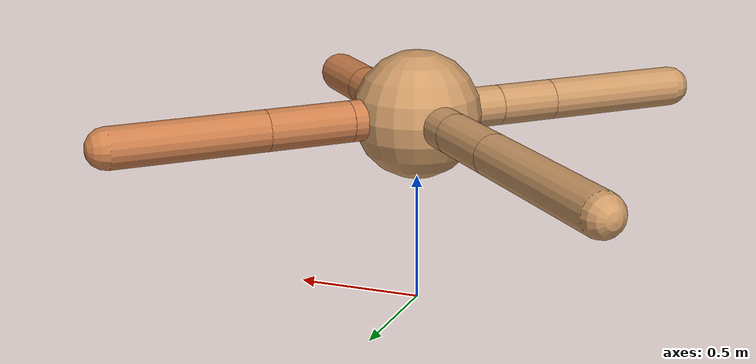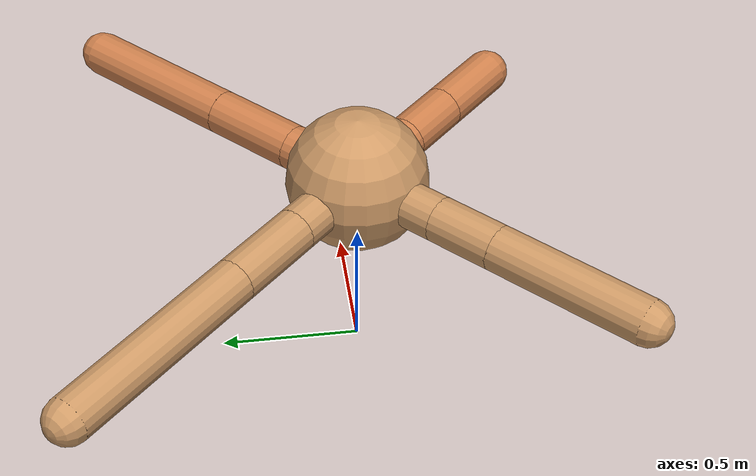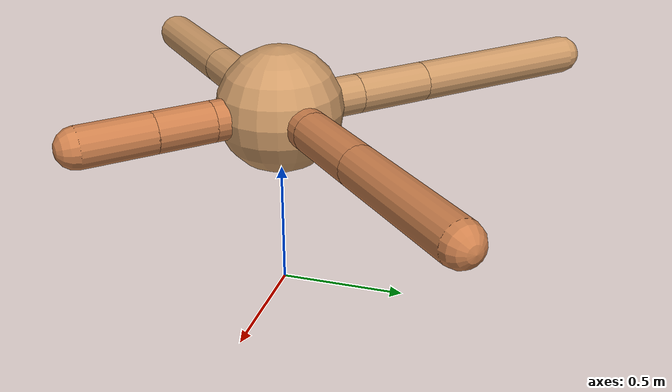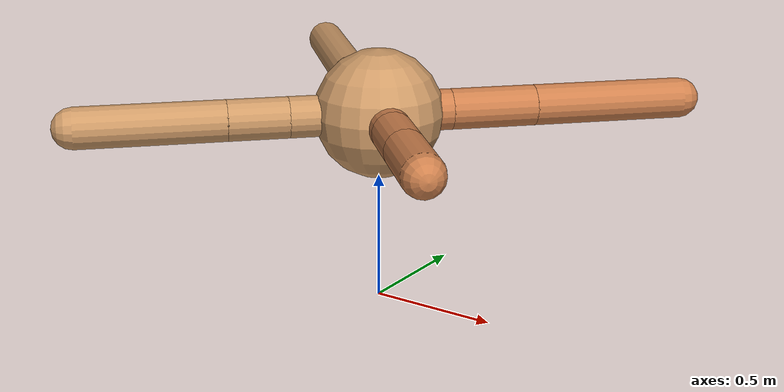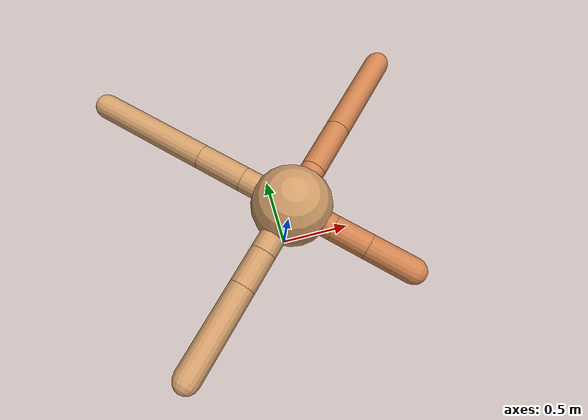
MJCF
<mujoco model="ant">
  <compiler angle="degree" coordinate="local" inertiafromgeom="true" />
  <option integrator="RK4" timestep="0.01" />
  <custom>
    <numeric data="0.0 0.0 0.55 1.0 0.0 0.0 0.0 0.0 1.0 0.0 -1.0 0.0 -1.0 0.0 1.0" name="init_qpos" />
  </custom>
  <default>
    <joint armature="1" damping="1" limited="true" />
    <geom conaffinity="0" condim="3" density="5.0" friction="1.5 0.1 0.1" margin="0.01" rgba="0.8 0.6 0.4 1" />
  </default>
  <worldbody>
    <body name="torso" pos="0 0 0.75">
      <geom name="torso_geom" pos="0 0 0" size="0.25" type="sphere" />

      <body name="front_left_leg" pos="0 0 0">
        <geom fromto="0.0 0.0 0.0 0.2 0.2 0.0" name="aux_1_geom" size="0.08" type="capsule" rgba=".8 .5 .3 1" />
        <body name="aux_1" pos="0.2 0.2 0.0">
          <joint axis="0 0 1" name="hip_1" pos="0.0 0.0 0.0" range="-40 40" type="hinge" />
          <geom fromto="0.0 0.0 0.0 0.23541214674329813 0.23541214674329813 0.0" name="left_leg_geom" size="0.08" type="capsule" rgba=".8 .5 .3 1" />
          <body pos="0.23541214674329813 0.23541214674329813 0.0" name="front_left_foot">
            <joint axis="-1 1 0" name="ankle_1" pos="0.0 0.0 0.0" range="30 100" type="hinge" />
            <geom fromto="0.0 0.0 0.0 0.4250755215486377 0.4250755215486377 0.0" name="left_ankle_geom" size="0.08" type="capsule" rgba=".8 .5 .3 1" />
          </body>
        </body>
      </body>
      <body name="front_right_leg" pos="0 0 0">
        <geom fromto="0.0 0.0 0.0 -0.23971208939210814 0.23971208939210814 0.0" name="aux_2_geom" size="0.08" type="capsule" />
        <body name="aux_2" pos="-0.23971208939210814 0.23971208939210814 0.0">
          <joint axis="0 0 1" name="hip_2" pos="0.0 0.0 0.0" range="-40 40" type="hinge" />
          <geom fromto="0.0 0.0 0.0 -0.21618881539054638 0.21618881539054638 0.0" name="right_leg_geom" size="0.08" type="capsule" />
          <body pos="-0.21618881539054638 0.21618881539054638 0.0" name="front_right_foot">
            <joint axis="1 1 0" name="ankle_2" pos="0.0 0.0 0.0" range="-100 -30" type="hinge" />
            <geom fromto="0.0 0.0 0.0 -0.5233189694014424 0.5233189694014424 0.0" name="right_ankle_geom" size="0.08" type="capsule" />
          </body>
        </body>
      </body>
      <body name="left_back_leg" pos="0 0 0">
        <geom fromto="0.0 0.0 0.0 -0.2441719842898646 -0.2441719842898646 0.0" name="aux_3_geom" size="0.08" type="capsule" />
        <body name="aux_3" pos="-0.2441719842898646 -0.2441719842898646 0.0">
          <joint axis="0 0 1" name="hip_3" pos="0.0 0.0 0.0" range="-40 40" type="hinge" />
          <geom fromto="0.0 0.0 0.0 -0.1643713947362271 -0.1643713947362271 0.0" name="back_leg_geom" size="0.08" type="capsule" />
          <body pos="-0.1643713947362271 -0.1643713947362271 0.0" name="left_back_foot">
            <joint axis="-1 1 0" name="ankle_3" pos="0.0 0.0 0.0" range="-100 -30" type="hinge" />
            <geom fromto="0.0 0.0 0.0 -0.39838872486438814 -0.39838872486438814 0.0" name="third_ankle_geom" size="0.08" type="capsule" />
          </body>
        </body>
      </body>
      <body name="right_back_leg" pos="0 0 0">
        <geom fromto="0.0 0.0 0.0 0.2 -0.2 0.0" name="aux_4_geom" size="0.08" type="capsule" rgba=".8 .5 .3 1" />
        <body name="aux_4" pos="0.2 -0.2 0.0">
          <joint axis="0 0 1" name="hip_4" pos="0.0 0.0 0.0" range="-40 40" type="hinge" />
          <geom fromto="0.0 0.0 0.0 0.15890954295481663 -0.15890954295481663 0.0" name="rightback_leg_geom" size="0.08" type="capsule" rgba=".8 .5 .3 1" />
          <body pos="0.15890954295481663 -0.15890954295481663 0.0" name="right_back_foot">
            <joint axis="1 1 0" name="ankle_4" pos="0.0 0.0 0.0" range="30 100" type="hinge" />
            <geom fromto="0.0 0.0 0.0 0.20077535593500373 -0.20077535593500373 0.0" name="fourth_ankle_geom" size="0.08" type="capsule" rgba=".8 .5 .3 1" />
          </body>
        </body>
      </body>
    </body>
  </worldbody>
  <actuator>
    <motor ctrllimited="true" ctrlrange="-1.0 1.0" joint="hip_4" gear="150" />
    <motor ctrllimited="true" ctrlrange="-1.0 1.0" joint="ankle_4" gear="150" />
    <motor ctrllimited="true" ctrlrange="-1.0 1.0" joint="hip_1" gear="150" />
    <motor ctrllimited="true" ctrlrange="-1.0 1.0" joint="ankle_1" gear="150" />
    <motor ctrllimited="true" ctrlrange="-1.0 1.0" joint="hip_2" gear="150" />
    <motor ctrllimited="true" ctrlrange="-1.0 1.0" joint="ankle_2" gear="150" />
    <motor ctrllimited="true" ctrlrange="-1.0 1.0" joint="hip_3" gear="150" />
    <motor ctrllimited="true" ctrlrange="-1.0 1.0" joint="ankle_3" gear="150" />
  </actuator>
</mujoco>
